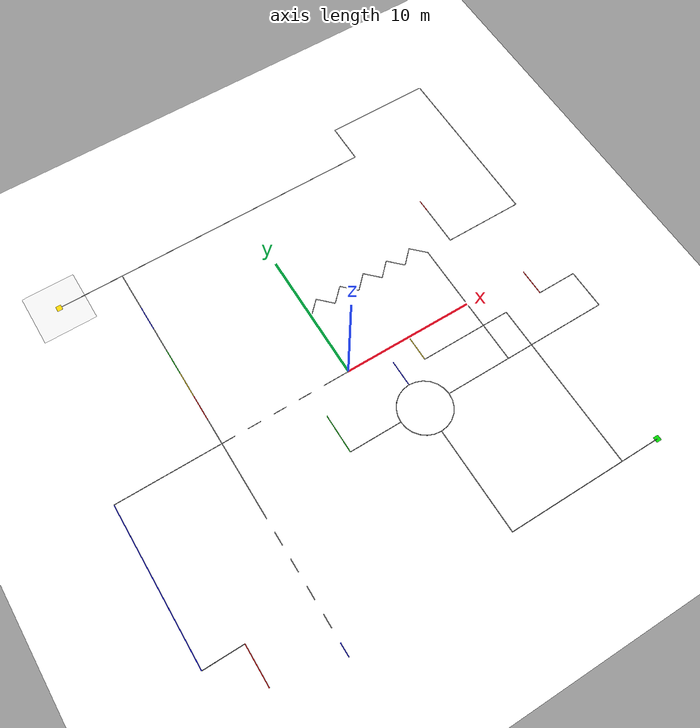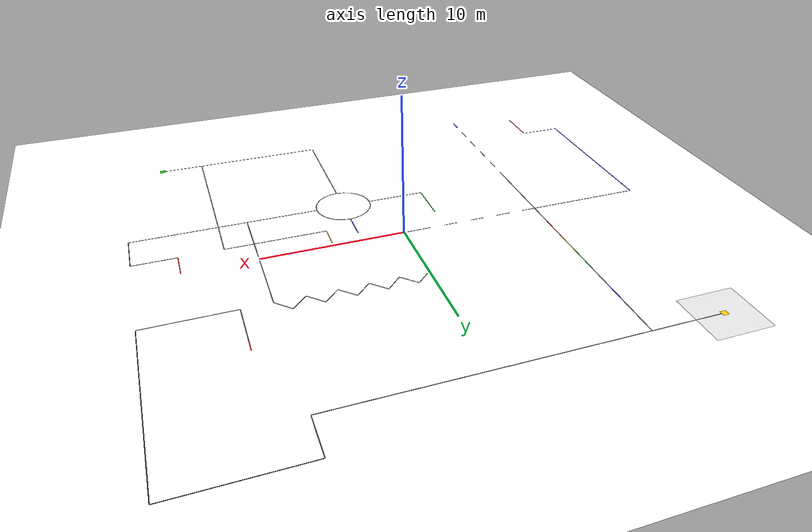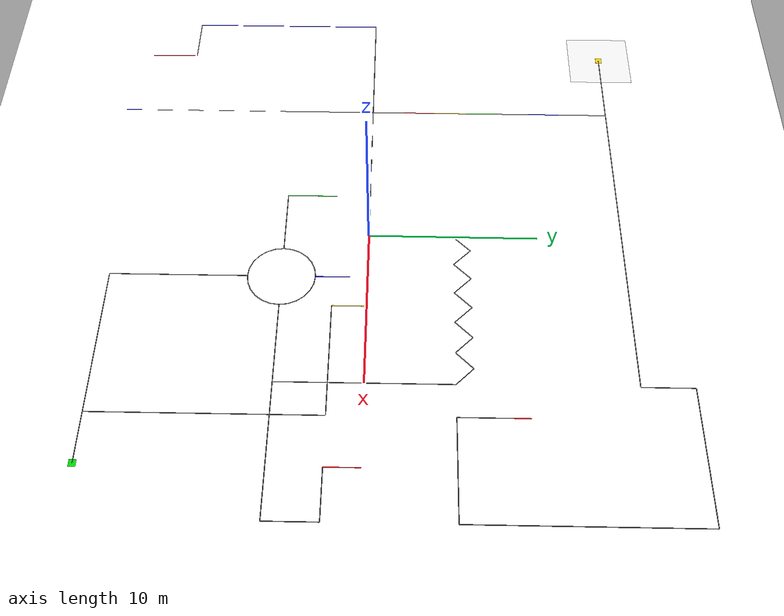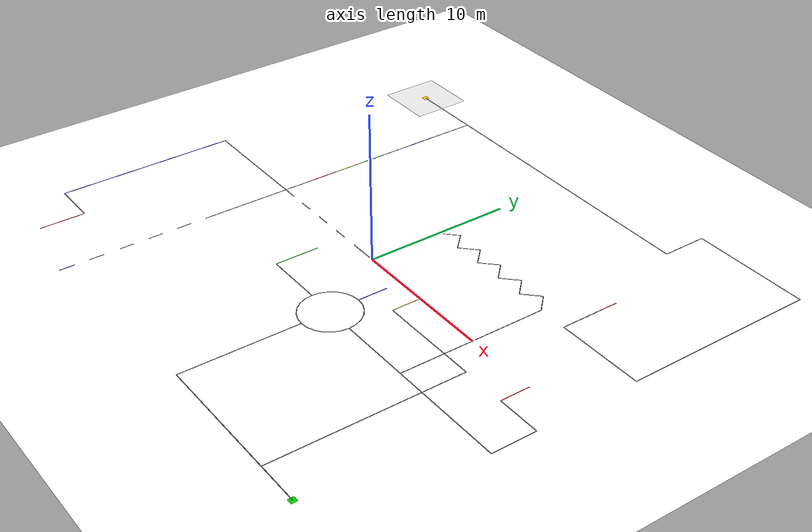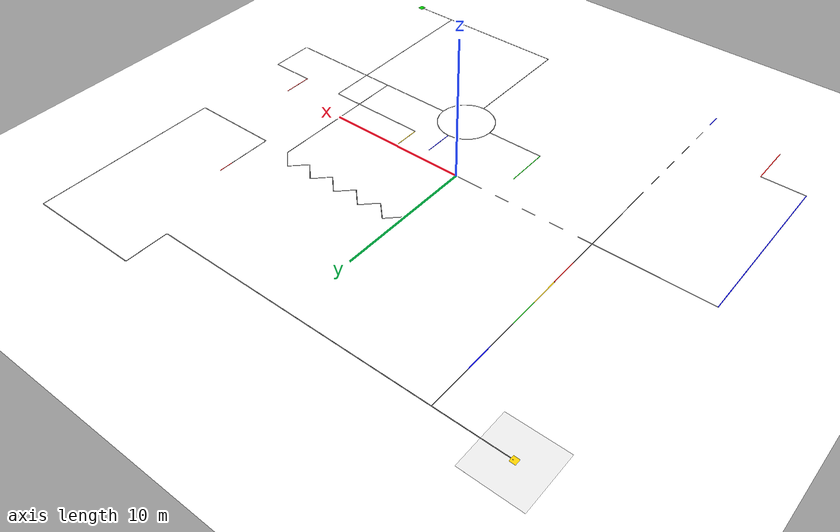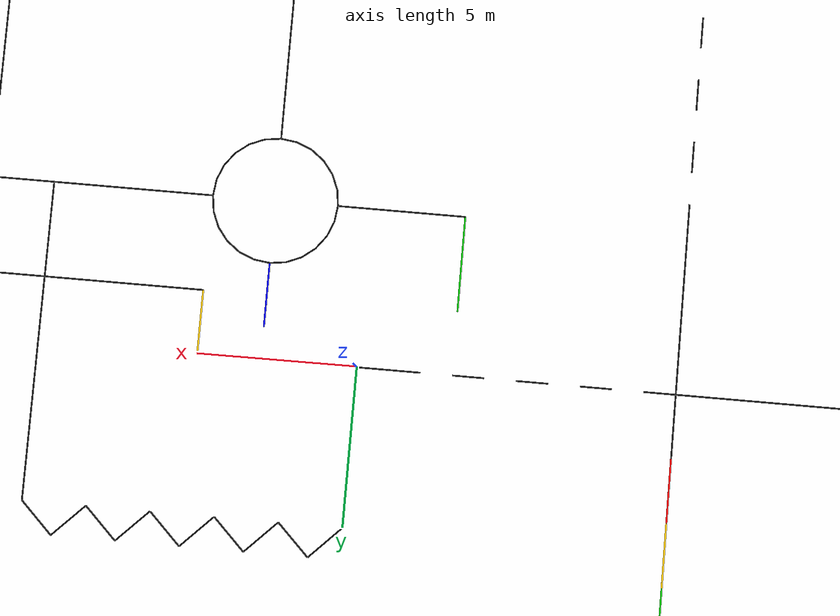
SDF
<?xml version="1.0" ?>
<sdf version="1.6">
  <world name="GoogleMaps_Troll_Maze">

    <!-- ระบบพื้นฐานที่ทำให้ฟิสิกส์, คำสั่งสร้าง model และ sensor ทำงาน -->
    <physics name="1ms" type="ode">
      <max_step_size>0.001</max_step_size>
      <real_time_factor>1.0</real_time_factor>
    </physics>

    <plugin filename="libignition-gazebo-physics-system.so"
            name="ignition::gazebo::systems::Physics">
    </plugin>
    <plugin filename="libignition-gazebo-user-commands-system.so"
            name="ignition::gazebo::systems::UserCommands">
    </plugin>
    <plugin filename="libignition-gazebo-scene-broadcaster-system.so"
            name="ignition::gazebo::systems::SceneBroadcaster">
    </plugin>
    <!-- Quad RGB เป็น camera sensor จึงต้องมี plugin นี้จึงจะส่งภาพได้ -->
    <plugin filename="libignition-gazebo-sensors-system.so"
            name="ignition::gazebo::systems::Sensors">
      <render_engine>ogre2</render_engine>
    </plugin>

    <!-- แสงสว่างจัดเต็ม ให้เซนเซอร์กล้องจับสีได้ชัดเจน -->
    <light type="directional" name="sun">
      <cast_shadows>true</cast_shadows>
      <pose>0 0 10 0 0 0</pose>
      <diffuse>1.0 1.0 1.0 1</diffuse>
      <specular>0.5 0.5 0.5 1</specular>
      <direction>-0.5 0.1 -0.9</direction>
    </light>

    <!-- พื้นสีขาว ขยายขนาดเป็น 40x40 เมตร (กว้างสะใจ) -->
    <model name="ground_plane">
      <static>true</static>
      <link name="link">
        <collision name="collision"><geometry><plane><normal>0 0 1</normal><size>40 40</size></plane></geometry></collision>
        <visual name="visual">
          <geometry><plane><normal>0 0 1</normal><size>40 40</size></plane></geometry>
          <material><ambient>1 1 1 1</ambient><diffuse>1 1 1 1</diffuse></material>
        </visual>
      </link>
    </model>

    <!-- ================= สนาม Line Tracking (ต่อกันเนียน 100% ไม่มีเส้นลอย) ================= -->
    <model name="pro_street_lines">
      <static>true</static>
      <link name="track_link">

        <!-- พื้นหลังสีเทาบางๆ ไว้ตรงจุด Start ตามต้นฉบับ -->
        <visual name="bg_grey">
          <pose>-15 15 0.0005 0 0 0</pose>
          <geometry><box><size>4.0 4.0 0.0005</size></box></geometry>
          <material><ambient>0.9 0.9 0.9 1</ambient><diffuse>0.9 0.9 0.9 1</diffuse></material>
        </visual>

        <!-- ================= จุดเริ่มต้น (START) ================= -->
        <visual name="start_plate">
          <pose>-15.0 15.0 0.001 0 0 0</pose>
          <geometry><box><size>0.4 0.4 0.001</size></box></geometry>
          <material><ambient>1 0.8 0 1</ambient><diffuse>1 0.8 0 1</diffuse></material>
        </visual>

        <!-- เส้นทางหลัก 1 -->
        <visual name="t1"><pose>-12.5 15.0 0.001 0 0 0</pose><geometry><box><size>5.0 0.05 0.001</size></box></geometry><material><ambient>0 0 0 1</ambient><diffuse>0 0 0 1</diffuse></material></visual>

        <!-- ================= ซอยหลอก 1 (สวรรค์ชั้น 7 - วิ่งยาวๆ แล้วตัน) ================= -->
        <visual name="d1_1"><pose>0.0 15.0 0.001 0 0 0</pose><geometry><box><size>20.0 0.05 0.001</size></box></geometry><material><ambient>0 0 0 1</ambient><diffuse>0 0 0 1</diffuse></material></visual>
        <visual name="d1_2"><pose>10.0 16.5 0.001 0 0 1.570796</pose><geometry><box><size>3.0 0.05 0.001</size></box></geometry><material><ambient>0 0 0 1</ambient><diffuse>0 0 0 1</diffuse></material></visual>
        <visual name="d1_3"><pose>14.0 18.0 0.001 0 0 0</pose><geometry><box><size>8.0 0.05 0.001</size></box></geometry><material><ambient>0 0 0 1</ambient><diffuse>0 0 0 1</diffuse></material></visual>
        <visual name="d1_4"><pose>18.0 11.5 0.001 0 0 1.570796</pose><geometry><box><size>13.0 0.05 0.001</size></box></geometry><material><ambient>0 0 0 1</ambient><diffuse>0 0 0 1</diffuse></material></visual>
        <visual name="d1_5"><pose>15.0 5.0 0.001 0 0 0</pose><geometry><box><size>6.0 0.05 0.001</size></box></geometry><material><ambient>0 0 0 1</ambient><diffuse>0 0 0 1</diffuse></material></visual>
        <visual name="d1_6"><pose>12.0 6.5 0.001 0 0 1.570796</pose><geometry><box><size>3.0 0.05 0.001</size></box></geometry><material><ambient>0 0 0 1</ambient><diffuse>0 0 0 1</diffuse></material></visual>
        <visual name="d1_7_red"><pose>12.0 8.5 0.001 0 0 1.570796</pose><geometry><box><size>1.0 0.05 0.001</size></box></geometry><material><ambient>1 0 0 1</ambient><diffuse>1 0 0 1</diffuse></material></visual> <!-- ทางตันสีแดง -->

        <!-- ================= เส้นทางหลัก 2 & แถบสี (Color Bar Test) ================= -->
        <visual name="cb_1"><pose>-10.0 13.5 0.001 0 0 1.570796</pose><geometry><box><size>3.0 0.05 0.001</size></box></geometry><material><ambient>0 0 0 1</ambient><diffuse>0 0 0 1</diffuse></material></visual>
        <visual name="cb_2"><pose>-10.0 11.0 0.001 0 0 1.570796</pose><geometry><box><size>2.0 0.05 0.001</size></box></geometry><material><ambient>0 0 1 1</ambient><diffuse>0 0 1 1</diffuse></material></visual>
        <visual name="cb_3"><pose>-10.0 9.0 0.001 0 0 1.570796</pose><geometry><box><size>2.0 0.05 0.001</size></box></geometry><material><ambient>0 0 0 1</ambient><diffuse>0 0 0 1</diffuse></material></visual>
        <visual name="cb_4"><pose>-10.0 7.0 0.001 0 0 1.570796</pose><geometry><box><size>2.0 0.05 0.001</size></box></geometry><material><ambient>0 0.8 0 1</ambient><diffuse>0 0.8 0 1</diffuse></material></visual> <!-- เขียว -->
        <visual name="cb_5"><pose>-10.0 5.0 0.001 0 0 1.570796</pose><geometry><box><size>2.0 0.05 0.001</size></box></geometry><material><ambient>1 0.8 0 1</ambient><diffuse>1 0.8 0 1</diffuse></material></visual> <!-- เหลือง -->
        <visual name="cb_6"><pose>-10.0 3.0 0.001 0 0 1.570796</pose><geometry><box><size>2.0 0.05 0.001</size></box></geometry><material><ambient>1 0 0 1</ambient><diffuse>1 0 0 1</diffuse></material></visual> <!-- แดง -->
        <visual name="cb_7"><pose>-10.0 1.0 0.001 0 0 1.570796</pose><geometry><box><size>2.0 0.05 0.001</size></box></geometry><material><ambient>0 0 0 1</ambient><diffuse>0 0 0 1</diffuse></material></visual>

        <!-- ================= ซอยหลอก 2 (วิ่งลงตะวันตกแล้วเข้าดงเขาวงกต) ================= -->
        <visual name="d2_1"><pose>-14.0 0.0 0.001 0 0 0</pose><geometry><box><size>8.0 0.05 0.001</size></box></geometry><material><ambient>0 0 0 1</ambient><diffuse>0 0 0 1</diffuse></material></visual>
        <visual name="d2_2"><pose>-18.0 -6.0 0.001 0 0 1.570796</pose><geometry><box><size>12.0 0.05 0.001</size></box></geometry><material><ambient>0 0 1 1</ambient><diffuse>0 0 1 1</diffuse></material></visual>
        <visual name="d2_3"><pose>-16.5 -12.0 0.001 0 0 0</pose><geometry><box><size>3.0 0.05 0.001</size></box></geometry><material><ambient>0 0 0 1</ambient><diffuse>0 0 0 1</diffuse></material></visual>
        <visual name="d2_4"><pose>-15.0 -13.5 0.001 0 0 1.570796</pose><geometry><box><size>3.0 0.05 0.001</size></box></geometry><material><ambient>1 0 0 1</ambient><diffuse>1 0 0 1</diffuse></material></visual> <!-- ทางตันสีแดง -->

        <!-- ================= ซอยหลอก 3 (เส้นประหลอกดิ่งลงใต้) ================= -->
        <visual name="d3_1"><pose>-10.0 -2.5 0.001 0 0 1.570796</pose><geometry><box><size>5.0 0.05 0.001</size></box></geometry><material><ambient>0 0 0 1</ambient><diffuse>0 0 0 1</diffuse></material></visual>
        <visual name="d3_d1"><pose>-10.0 -5.5 0.001 0 0 1.570796</pose><geometry><box><size>1.0 0.05 0.001</size></box></geometry><material><ambient>0 0 0 1</ambient><diffuse>0 0 0 1</diffuse></material></visual>
        <visual name="d3_d2"><pose>-10.0 -7.5 0.001 0 0 1.570796</pose><geometry><box><size>1.0 0.05 0.001</size></box></geometry><material><ambient>0 0 0 1</ambient><diffuse>0 0 0 1</diffuse></material></visual>
        <visual name="d3_d3"><pose>-10.0 -9.5 0.001 0 0 1.570796</pose><geometry><box><size>1.0 0.05 0.001</size></box></geometry><material><ambient>0 0 0 1</ambient><diffuse>0 0 0 1</diffuse></material></visual>
        <visual name="d3_d4"><pose>-10.0 -11.5 0.001 0 0 1.570796</pose><geometry><box><size>1.0 0.05 0.001</size></box></geometry><material><ambient>0 0 0 1</ambient><diffuse>0 0 0 1</diffuse></material></visual>
        <visual name="d3_d5"><pose>-10.0 -13.5 0.001 0 0 1.570796</pose><geometry><box><size>1.0 0.05 0.001</size></box></geometry><material><ambient>0 0 0 1</ambient><diffuse>0 0 0 1</diffuse></material></visual>
        <visual name="d3_d6"><pose>-10.0 -15.5 0.001 0 0 1.570796</pose><geometry><box><size>1.0 0.05 0.001</size></box></geometry><material><ambient>0 0 1 1</ambient><diffuse>0 0 1 1</diffuse></material></visual> <!-- ทางตันสีฟ้า -->

        <!-- ================= ด่านเส้นประของจริง (มุ่งหน้าทิศตะวันออก) ================= -->
        <visual name="t3_d1"><pose>-9.5 0.0 0.001 0 0 0</pose><geometry><box><size>1.0 0.05 0.001</size></box></geometry><material><ambient>0 0 0 1</ambient><diffuse>0 0 0 1</diffuse></material></visual>
        <visual name="t3_d2"><pose>-7.5 0.0 0.001 0 0 0</pose><geometry><box><size>1.0 0.05 0.001</size></box></geometry><material><ambient>0 0 0 1</ambient><diffuse>0 0 0 1</diffuse></material></visual>
        <visual name="t3_d3"><pose>-5.5 0.0 0.001 0 0 0</pose><geometry><box><size>1.0 0.05 0.001</size></box></geometry><material><ambient>0 0 0 1</ambient><diffuse>0 0 0 1</diffuse></material></visual>
        <visual name="t3_d4"><pose>-3.5 0.0 0.001 0 0 0</pose><geometry><box><size>1.0 0.05 0.001</size></box></geometry><material><ambient>0 0 0 1</ambient><diffuse>0 0 0 1</diffuse></material></visual>
        <visual name="t3_d5"><pose>-1.5 0.0 0.001 0 0 0</pose><geometry><box><size>1.0 0.05 0.001</size></box></geometry><material><ambient>0 0 0 1</ambient><diffuse>0 0 0 1</diffuse></material></visual>
        <visual name="t3_s1"><pose>-0.5 0.0 0.001 0 0 0</pose><geometry><box><size>1.0 0.05 0.001</size></box></geometry><material><ambient>0 0 0 1</ambient><diffuse>0 0 0 1</diffuse></material></visual>

        <!-- เส้นทางหลัก 4 ดันขึ้นเหนือ -->
        <visual name="t4"><pose>0.0 2.5 0.001 0 0 1.570796</pose><geometry><box><size>5.0 0.05 0.001</size></box></geometry><material><ambient>0 0 0 1</ambient><diffuse>0 0 0 1</diffuse></material></visual>

        <!-- ================= ด่านซิกแซกตัวต้านทานมรณะ (ยาว 10 เมตร) ================= -->
        <visual name="z1"><pose>0.5 5.5 0.001 0 0 0.785398</pose><geometry><box><size>1.414213 0.05 0.001</size></box></geometry><material><ambient>0 0 0 1</ambient><diffuse>0 0 0 1</diffuse></material></visual>
        <visual name="z2"><pose>1.5 5.5 0.001 0 0 -0.785398</pose><geometry><box><size>1.414213 0.05 0.001</size></box></geometry><material><ambient>0 0 0 1</ambient><diffuse>0 0 0 1</diffuse></material></visual>
        <visual name="z3"><pose>2.5 5.5 0.001 0 0 0.785398</pose><geometry><box><size>1.414213 0.05 0.001</size></box></geometry><material><ambient>0 0 0 1</ambient><diffuse>0 0 0 1</diffuse></material></visual>
        <visual name="z4"><pose>3.5 5.5 0.001 0 0 -0.785398</pose><geometry><box><size>1.414213 0.05 0.001</size></box></geometry><material><ambient>0 0 0 1</ambient><diffuse>0 0 0 1</diffuse></material></visual>
        <visual name="z5"><pose>4.5 5.5 0.001 0 0 0.785398</pose><geometry><box><size>1.414213 0.05 0.001</size></box></geometry><material><ambient>0 0 0 1</ambient><diffuse>0 0 0 1</diffuse></material></visual>
        <visual name="z6"><pose>5.5 5.5 0.001 0 0 -0.785398</pose><geometry><box><size>1.414213 0.05 0.001</size></box></geometry><material><ambient>0 0 0 1</ambient><diffuse>0 0 0 1</diffuse></material></visual>
        <visual name="z7"><pose>6.5 5.5 0.001 0 0 0.785398</pose><geometry><box><size>1.414213 0.05 0.001</size></box></geometry><material><ambient>0 0 0 1</ambient><diffuse>0 0 0 1</diffuse></material></visual>
        <visual name="z8"><pose>7.5 5.5 0.001 0 0 -0.785398</pose><geometry><box><size>1.414213 0.05 0.001</size></box></geometry><material><ambient>0 0 0 1</ambient><diffuse>0 0 0 1</diffuse></material></visual>
        <visual name="z9"><pose>8.5 5.5 0.001 0 0 0.785398</pose><geometry><box><size>1.414213 0.05 0.001</size></box></geometry><material><ambient>0 0 0 1</ambient><diffuse>0 0 0 1</diffuse></material></visual>
        <visual name="z10"><pose>9.5 5.5 0.001 0 0 -0.785398</pose><geometry><box><size>1.414213 0.05 0.001</size></box></geometry><material><ambient>0 0 0 1</ambient><diffuse>0 0 0 1</diffuse></material></visual>

        <!-- เส้นทางหลัก 6 ดิ่งลงใต้ -->
        <visual name="t6"><pose>10.0 0.0 0.001 0 0 1.570796</pose><geometry><box><size>10.0 0.05 0.001</size></box></geometry><material><ambient>0 0 0 1</ambient><diffuse>0 0 0 1</diffuse></material></visual>

        <!-- ================= ซอยหลอก 4 (ฉีกออกขวา แล้วตัน) ================= -->
        <visual name="d4_1"><pose>14.0 -5.0 0.001 0 0 0</pose><geometry><box><size>8.0 0.05 0.001</size></box></geometry><material><ambient>0 0 0 1</ambient><diffuse>0 0 0 1</diffuse></material></visual>
        <visual name="d4_2"><pose>18.0 -3.5 0.001 0 0 1.570796</pose><geometry><box><size>3.0 0.05 0.001</size></box></geometry><material><ambient>0 0 0 1</ambient><diffuse>0 0 0 1</diffuse></material></visual>
        <visual name="d4_3"><pose>16.5 -2.0 0.001 0 0 0</pose><geometry><box><size>3.0 0.05 0.001</size></box></geometry><material><ambient>0 0 0 1</ambient><diffuse>0 0 0 1</diffuse></material></visual>
        <visual name="d4_4"><pose>15.0 -1.0 0.001 0 0 1.570796</pose><geometry><box><size>2.0 0.05 0.001</size></box></geometry><material><ambient>1 0 0 1</ambient><diffuse>1 0 0 1</diffuse></material></visual> <!-- ทางตันสีแดง -->

        <!-- เส้นทางหลัก 7 เตรียมเข้าวงเวียน -->
        <visual name="t7"><pose>7.5 -5.0 0.001 0 0 0</pose><geometry><box><size>5.0 0.05 0.001</size></box></geometry><material><ambient>0 0 0 1</ambient><diffuse>0 0 0 1</diffuse></material></visual>

        <!-- ================= วงเวียนโดนัท และ ซอยหลอกเพียบ ================= -->
        <visual name="donut_out">
          <pose>3.0 -5.0 0.001 0 0 0</pose>
          <geometry><cylinder><radius>2.0</radius><length>0.001</length></cylinder></geometry>
          <material><ambient>0 0 0 1</ambient><diffuse>0 0 0 1</diffuse></material>
        </visual>
        <visual name="donut_in">
          <pose>3.0 -5.0 0.002 0 0 0</pose>
          <geometry><cylinder><radius>1.95</radius><length>0.001</length></cylinder></geometry>
          <material><ambient>1 1 1 1</ambient><diffuse>1 1 1 1</diffuse></material>
        </visual>

        <!-- ซอยหลอกชี้ขึ้นเหนือ (ฟ้า) -->
        <visual name="d_n"><pose>3.0 -2.0 0.001 0 0 1.570796</pose><geometry><box><size>2.0 0.05 0.001</size></box></geometry><material><ambient>0 0 1 1</ambient><diffuse>0 0 1 1</diffuse></material></visual>
        <!-- ซอยหลอกชี้ไปตะวันตก (เขียว) -->
        <visual name="d_w1"><pose>-1.0 -5.0 0.001 0 0 0</pose><geometry><box><size>4.0 0.05 0.001</size></box></geometry><material><ambient>0 0 0 1</ambient><diffuse>0 0 0 1</diffuse></material></visual>
        <visual name="d_w2"><pose>-3.0 -3.5 0.001 0 0 1.570796</pose><geometry><box><size>3.0 0.05 0.001</size></box></geometry><material><ambient>0 0.8 0 1</ambient><diffuse>0 0.8 0 1</diffuse></material></visual>

        <!-- เส้นทางหลัก 8 ลงใต้จากโดนัท -->
        <visual name="t8"><pose>3.0 -11.0 0.001 0 0 1.570796</pose><geometry><box><size>8.0 0.05 0.001</size></box></geometry><material><ambient>0 0 0 1</ambient><diffuse>0 0 0 1</diffuse></material></visual>
        <visual name="t9_1"><pose>7.5 -15.0 0.001 0 0 0</pose><geometry><box><size>9.0 0.05 0.001</size></box></geometry><material><ambient>0 0 0 1</ambient><diffuse>0 0 0 1</diffuse></material></visual>

        <!-- ================= ซอยหลอก 5 (เจ็บใจสุด วิ่งย้อนกลับขึ้นไปหาซิกแซก) ================= -->
        <visual name="d5_1"><pose>12.0 -8.5 0.001 0 0 1.570796</pose><geometry><box><size>13.0 0.05 0.001</size></box></geometry><material><ambient>0 0 0 1</ambient><diffuse>0 0 0 1</diffuse></material></visual>
        <visual name="d5_2"><pose>8.5 -2.0 0.001 0 0 0</pose><geometry><box><size>7.0 0.05 0.001</size></box></geometry><material><ambient>0 0 0 1</ambient><diffuse>0 0 0 1</diffuse></material></visual>
        <visual name="d5_3"><pose>5.0 -1.0 0.001 0 0 1.570796</pose><geometry><box><size>2.0 0.05 0.001</size></box></geometry><material><ambient>1 0.8 0 1</ambient><diffuse>1 0.8 0 1</diffuse></material></visual> <!-- ทางตันสีเหลือง -->

        <!-- เส้นทางหลักเข้าเส้นชัย -->
        <visual name="t9_2"><pose>13.5 -15.0 0.001 0 0 0</pose><geometry><box><size>3.0 0.05 0.001</size></box></geometry><material><ambient>0 0 0 1</ambient><diffuse>0 0 0 1</diffuse></material></visual>

        <!-- ================= จุด FINISH (สีเขียว) ================= -->
        <visual name="finish_plate">
          <pose>15.0 -15.0 0.001 0 0 0</pose>
          <geometry><box><size>0.4 0.4 0.001</size></box></geometry>
          <material><ambient>0 0.8 0 1</ambient><diffuse>0 0.8 0 1</diffuse></material>
        </visual>

      </link>
    </model>
  </world>
</sdf>
